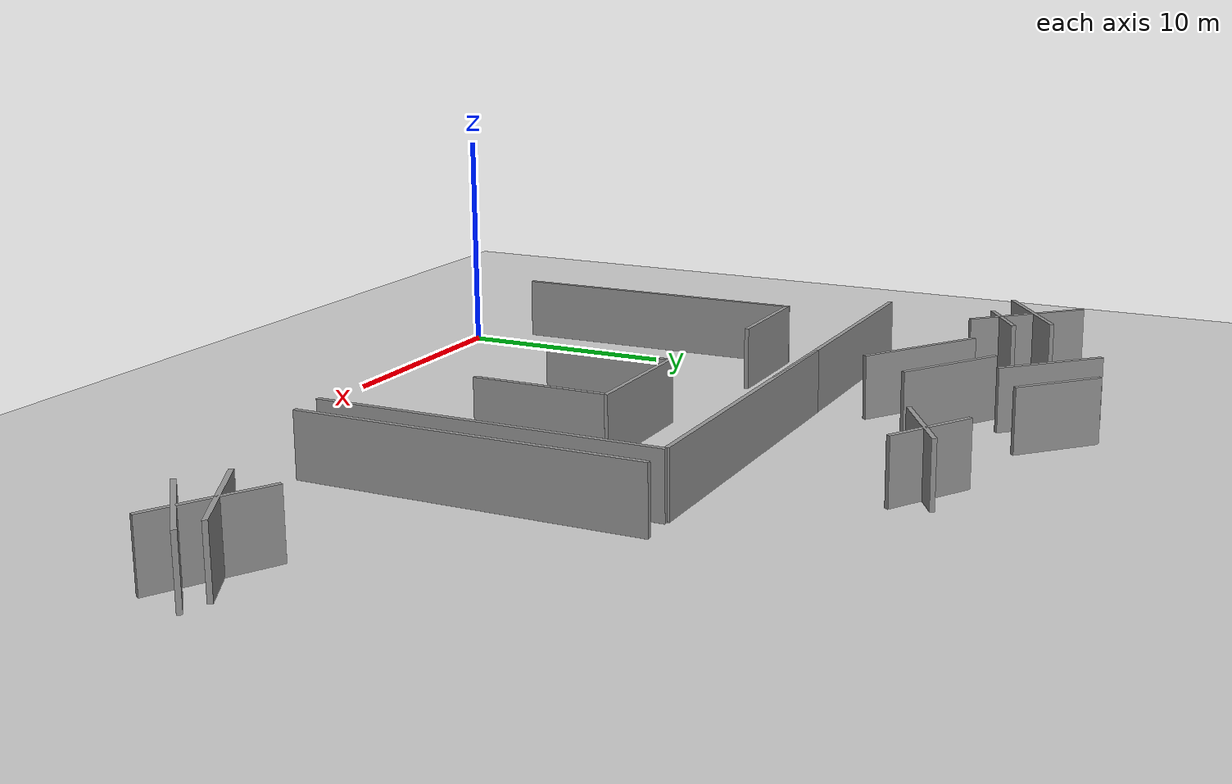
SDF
<sdf version="1.7">
 <world name="default">
  <model name="ground_plane">
   <static>1</static>
   <link name="link">
    <collision name="collision">
     <geometry><plane><normal>0 0 1</normal><size>100 100</size></plane></geometry>
     <surface>
      <contact><collide_bitmask>65535</collide_bitmask></contact>
      <friction><ode><mu>100</mu><mu2>50</mu2></ode></friction>
     </surface>
    </collision>
    <visual name="visual">
     <cast_shadows>0</cast_shadows>
     <geometry><plane><normal>0 0 1</normal><size>100 100</size></plane></geometry>
     <material>
      <script><uri>file://media/materials/scripts/gazebo.material</uri><name>Gazebo/Grey</name></script>
     </material>
    </visual>
   </link>
  </model>
  <model name="grey_wall_5_clone_0">
   <link name="link">
    <pose>0 0 1.4 0 -0 0</pose>
    <inertial>
     <mass>1</mass>
     <inertia><ixx>1</ixx><ixy>0</ixy><ixz>0</ixz><iyy>1</iyy><iyz>0</iyz><izz>1</izz></inertia>
    </inertial>
    <visual name="visual">
     <cast_shadows>0</cast_shadows>
     <geometry><box><size>5 0.2 2.8</size></box></geometry>
     <material>
      <script>
       <uri>model://grey_wall/materials/scripts</uri>
       <uri>model://grey_wall/materials/textures</uri>
       <name>vrc/grey_wall</name>
      </script>
      <shader type="pixel"><normal_map>__default__</normal_map></shader>
      <ambient>1 1 1 1</ambient>
      <diffuse>1 1 1 1</diffuse>
      <specular>0 0 0 1</specular>
      <emissive>0 0 0 1</emissive>
     </material>
    </visual>
    <collision name="collision">
     <geometry><box><size>5 0.2 2.8</size></box></geometry>
     <surface>
      <friction>
       <ode><mu>1</mu><mu2>1</mu2><fdir1>0 0 0</fdir1><slip1>0</slip1><slip2>0</slip2></ode>
       <torsional>
        <coefficient>1</coefficient>
        <patch_radius>0</patch_radius>
        <surface_radius>0</surface_radius>
        <use_patch_radius>1</use_patch_radius>
        <ode><slip>0</slip></ode>
       </torsional>
      </friction>
      <bounce><restitution_coefficient>0</restitution_coefficient><threshold>1e+06</threshold></bounce>
      <contact>
       <collide_without_contact>0</collide_without_contact>
       <collide_without_contact_bitmask>1</collide_without_contact_bitmask>
       <collide_bitmask>1</collide_bitmask>
       <ode>
        <soft_cfm>0</soft_cfm>
        <soft_erp>0.2</soft_erp>
        <kp>1e+13</kp>
        <kd>1</kd>
        <max_vel>0.01</max_vel>
        <min_depth>0</min_depth>
       </ode>
       <bullet>
        <split_impulse>1</split_impulse>
        <split_impulse_penetration_threshold>-0.01</split_impulse_penetration_threshold>
        <soft_cfm>0</soft_cfm>
        <soft_erp>0.2</soft_erp>
        <kp>1e+13</kp>
        <kd>1</kd>
       </bullet>
      </contact>
     </surface>
    </collision>
   </link>
   <static>1</static>
   <pose>30.4979 9.05013 0 0 -0 0.529284</pose>
  </model>
  <model name="grey_wall_5_clone_1">
   <link name="link">
    <pose>0 0 1.4 0 -0 0</pose>
    <inertial>
     <mass>1</mass>
     <inertia><ixx>1</ixx><ixy>0</ixy><ixz>0</ixz><iyy>1</iyy><iyz>0</iyz><izz>1</izz></inertia>
    </inertial>
    <visual name="visual">
     <cast_shadows>0</cast_shadows>
     <geometry><box><size>5 0.2 2.8</size></box></geometry>
     <material>
      <script>
       <uri>model://grey_wall/materials/scripts</uri>
       <uri>model://grey_wall/materials/textures</uri>
       <name>vrc/grey_wall</name>
      </script>
      <shader type="pixel"><normal_map>__default__</normal_map></shader>
      <ambient>1 1 1 1</ambient>
      <diffuse>1 1 1 1</diffuse>
      <specular>0 0 0 1</specular>
      <emissive>0 0 0 1</emissive>
     </material>
    </visual>
    <collision name="collision">
     <geometry><box><size>5 0.2 2.8</size></box></geometry>
     <surface>
      <friction>
       <ode><mu>1</mu><mu2>1</mu2><fdir1>0 0 0</fdir1><slip1>0</slip1><slip2>0</slip2></ode>
       <torsional>
        <coefficient>1</coefficient>
        <patch_radius>0</patch_radius>
        <surface_radius>0</surface_radius>
        <use_patch_radius>1</use_patch_radius>
        <ode><slip>0</slip></ode>
       </torsional>
      </friction>
      <bounce><restitution_coefficient>0</restitution_coefficient><threshold>1e+06</threshold></bounce>
      <contact>
       <collide_without_contact>0</collide_without_contact>
       <collide_without_contact_bitmask>1</collide_without_contact_bitmask>
       <collide_bitmask>1</collide_bitmask>
       <ode>
        <soft_cfm>0</soft_cfm>
        <soft_erp>0.2</soft_erp>
        <kp>1e+13</kp>
        <kd>1</kd>
        <max_vel>0.01</max_vel>
        <min_depth>0</min_depth>
       </ode>
       <bullet>
        <split_impulse>1</split_impulse>
        <split_impulse_penetration_threshold>-0.01</split_impulse_penetration_threshold>
        <soft_cfm>0</soft_cfm>
        <soft_erp>0.2</soft_erp>
        <kp>1e+13</kp>
        <kd>1</kd>
       </bullet>
      </contact>
     </surface>
    </collision>
   </link>
   <static>1</static>
   <pose>31.0104 9.05146 0 0 0 -0.50895</pose>
  </model>
  <model name="grey_wall_5_clone_clone_0_clone_1_clone">
   <link name="link">
    <pose>0 0 1.4 0 -0 0</pose>
    <inertial>
     <mass>1</mass>
     <inertia><ixx>1</ixx><ixy>0</ixy><ixz>0</ixz><iyy>1</iyy><iyz>0</iyz><izz>1</izz></inertia>
    </inertial>
    <visual name="visual">
     <cast_shadows>0</cast_shadows>
     <geometry><box><size>5 0.2 2.8</size></box></geometry>
     <material>
      <script>
       <uri>model://grey_wall/materials/scripts</uri>
       <uri>model://grey_wall/materials/textures</uri>
       <name>vrc/grey_wall</name>
      </script>
      <shader type="pixel"><normal_map>__default__</normal_map></shader>
      <ambient>1 1 1 1</ambient>
      <diffuse>1 1 1 1</diffuse>
      <specular>0 0 0 1</specular>
      <emissive>0 0 0 1</emissive>
     </material>
    </visual>
    <collision name="collision">
     <geometry><box><size>5 0.2 2.8</size></box></geometry>
     <surface>
      <friction>
       <ode><mu>1</mu><mu2>1</mu2><fdir1>0 0 0</fdir1><slip1>0</slip1><slip2>0</slip2></ode>
       <torsional>
        <coefficient>1</coefficient>
        <patch_radius>0</patch_radius>
        <surface_radius>0</surface_radius>
        <use_patch_radius>1</use_patch_radius>
        <ode><slip>0</slip></ode>
       </torsional>
      </friction>
      <bounce><restitution_coefficient>0</restitution_coefficient><threshold>1e+06</threshold></bounce>
      <contact>
       <collide_without_contact>0</collide_without_contact>
       <collide_without_contact_bitmask>1</collide_without_contact_bitmask>
       <collide_bitmask>1</collide_bitmask>
       <ode>
        <soft_cfm>0</soft_cfm>
        <soft_erp>0.2</soft_erp>
        <kp>1e+13</kp>
        <kd>1</kd>
        <max_vel>0.01</max_vel>
        <min_depth>0</min_depth>
       </ode>
       <bullet>
        <split_impulse>1</split_impulse>
        <split_impulse_penetration_threshold>-0.01</split_impulse_penetration_threshold>
        <soft_cfm>0</soft_cfm>
        <soft_erp>0.2</soft_erp>
        <kp>1e+13</kp>
        <kd>1</kd>
       </bullet>
      </contact>
     </surface>
    </collision>
   </link>
   <static>1</static>
   <pose>-5.91123 26.8606 0 0 -0 0.603575</pose>
  </model>
  <model name="grey_wall_5_clone_clone_0_clone_1_clone_0">
   <link name="link">
    <pose>0 0 1.4 0 -0 0</pose>
    <inertial>
     <mass>1</mass>
     <inertia><ixx>1</ixx><ixy>0</ixy><ixz>0</ixz><iyy>1</iyy><iyz>0</iyz><izz>1</izz></inertia>
    </inertial>
    <visual name="visual">
     <cast_shadows>0</cast_shadows>
     <geometry><box><size>5 0.2 2.8</size></box></geometry>
     <material>
      <script>
       <uri>model://grey_wall/materials/scripts</uri>
       <uri>model://grey_wall/materials/textures</uri>
       <name>vrc/grey_wall</name>
      </script>
      <shader type="pixel"><normal_map>__default__</normal_map></shader>
      <ambient>1 1 1 1</ambient>
      <diffuse>1 1 1 1</diffuse>
      <specular>0 0 0 1</specular>
      <emissive>0 0 0 1</emissive>
     </material>
    </visual>
    <collision name="collision">
     <geometry><box><size>5 0.2 2.8</size></box></geometry>
     <surface>
      <friction>
       <ode><mu>1</mu><mu2>1</mu2><fdir1>0 0 0</fdir1><slip1>0</slip1><slip2>0</slip2></ode>
       <torsional>
        <coefficient>1</coefficient>
        <patch_radius>0</patch_radius>
        <surface_radius>0</surface_radius>
        <use_patch_radius>1</use_patch_radius>
        <ode><slip>0</slip></ode>
       </torsional>
      </friction>
      <bounce><restitution_coefficient>0</restitution_coefficient><threshold>1e+06</threshold></bounce>
      <contact>
       <collide_without_contact>0</collide_without_contact>
       <collide_without_contact_bitmask>1</collide_without_contact_bitmask>
       <collide_bitmask>1</collide_bitmask>
       <ode>
        <soft_cfm>0</soft_cfm>
        <soft_erp>0.2</soft_erp>
        <kp>1e+13</kp>
        <kd>1</kd>
        <max_vel>0.01</max_vel>
        <min_depth>0</min_depth>
       </ode>
       <bullet>
        <split_impulse>1</split_impulse>
        <split_impulse_penetration_threshold>-0.01</split_impulse_penetration_threshold>
        <soft_cfm>0</soft_cfm>
        <soft_erp>0.2</soft_erp>
        <kp>1e+13</kp>
        <kd>1</kd>
       </bullet>
      </contact>
     </surface>
    </collision>
   </link>
   <static>1</static>
   <pose>4.749 26.0113 0 0 -0 2.55063</pose>
  </model>
  <model name="grey_wall_4_clone_0_clone_clone_0_clone_clone_clone_1_clone">
   <link name="link">
    <pose>0 0 1.4 0 -0 0</pose>
    <inertial>
     <mass>1</mass>
     <inertia><ixx>1</ixx><ixy>0</ixy><ixz>0</ixz><iyy>1</iyy><iyz>0</iyz><izz>1</izz></inertia>
    </inertial>
    <visual name="visual">
     <cast_shadows>0</cast_shadows>
     <geometry><box><size>4 0.2 2.8</size></box></geometry>
     <material>
      <script>
       <uri>model://grey_wall/materials/scripts</uri>
       <uri>model://grey_wall/materials/textures</uri>
       <name>vrc/grey_wall</name>
      </script>
      <shader type="pixel"><normal_map>__default__</normal_map></shader>
      <ambient>1 1 1 1</ambient>
      <diffuse>1 1 1 1</diffuse>
      <specular>0 0 0 1</specular>
      <emissive>0 0 0 1</emissive>
     </material>
    </visual>
    <collision name="collision">
     <geometry><box><size>4 0.2 2.8</size></box></geometry>
     <surface>
      <friction>
       <ode><mu>1</mu><mu2>1</mu2><fdir1>0 0 0</fdir1><slip1>0</slip1><slip2>0</slip2></ode>
       <torsional>
        <coefficient>1</coefficient>
        <patch_radius>0</patch_radius>
        <surface_radius>0</surface_radius>
        <use_patch_radius>1</use_patch_radius>
        <ode><slip>0</slip></ode>
       </torsional>
      </friction>
      <bounce><restitution_coefficient>0</restitution_coefficient><threshold>1e+06</threshold></bounce>
      <contact>
       <collide_without_contact>0</collide_without_contact>
       <collide_without_contact_bitmask>1</collide_without_contact_bitmask>
       <collide_bitmask>1</collide_bitmask>
       <ode>
        <soft_cfm>0</soft_cfm>
        <soft_erp>0.2</soft_erp>
        <kp>1e+13</kp>
        <kd>1</kd>
        <max_vel>0.01</max_vel>
        <min_depth>0</min_depth>
       </ode>
       <bullet>
        <split_impulse>1</split_impulse>
        <split_impulse_penetration_threshold>-0.01</split_impulse_penetration_threshold>
        <soft_cfm>0</soft_cfm>
        <soft_erp>0.2</soft_erp>
        <kp>1e+13</kp>
        <kd>1</kd>
       </bullet>
      </contact>
     </surface>
    </collision>
   </link>
   <static>1</static>
   <pose>13.6601 27.8625 0 0 -0 2.58708</pose>
  </model>
  <model name="grey_wall_5_clone_clone_0_clone_1_clone_clone_0">
   <link name="link">
    <pose>0 0 1.4 0 -0 0</pose>
    <inertial>
     <mass>1</mass>
     <inertia><ixx>1</ixx><ixy>0</ixy><ixz>0</ixz><iyy>1</iyy><iyz>0</iyz><izz>1</izz></inertia>
    </inertial>
    <visual name="visual">
     <cast_shadows>0</cast_shadows>
     <geometry><box><size>5 0.2 2.8</size></box></geometry>
     <material>
      <script>
       <uri>model://grey_wall/materials/scripts</uri>
       <uri>model://grey_wall/materials/textures</uri>
       <name>vrc/grey_wall</name>
      </script>
      <shader type="pixel"><normal_map>__default__</normal_map></shader>
      <ambient>1 1 1 1</ambient>
      <diffuse>1 1 1 1</diffuse>
      <specular>0 0 0 1</specular>
      <emissive>0 0 0 1</emissive>
     </material>
    </visual>
    <collision name="collision">
     <geometry><box><size>5 0.2 2.8</size></box></geometry>
     <surface>
      <friction>
       <ode><mu>1</mu><mu2>1</mu2><fdir1>0 0 0</fdir1><slip1>0</slip1><slip2>0</slip2></ode>
       <torsional>
        <coefficient>1</coefficient>
        <patch_radius>0</patch_radius>
        <surface_radius>0</surface_radius>
        <use_patch_radius>1</use_patch_radius>
        <ode><slip>0</slip></ode>
       </torsional>
      </friction>
      <bounce><restitution_coefficient>0</restitution_coefficient><threshold>1e+06</threshold></bounce>
      <contact>
       <collide_without_contact>0</collide_without_contact>
       <collide_without_contact_bitmask>1</collide_without_contact_bitmask>
       <collide_bitmask>1</collide_bitmask>
       <ode>
        <soft_cfm>0</soft_cfm>
        <soft_erp>0.2</soft_erp>
        <kp>1e+13</kp>
        <kd>1</kd>
        <max_vel>0.01</max_vel>
        <min_depth>0</min_depth>
       </ode>
       <bullet>
        <split_impulse>1</split_impulse>
        <split_impulse_penetration_threshold>-0.01</split_impulse_penetration_threshold>
        <soft_cfm>0</soft_cfm>
        <soft_erp>0.2</soft_erp>
        <kp>1e+13</kp>
        <kd>1</kd>
       </bullet>
      </contact>
     </surface>
    </collision>
   </link>
   <static>1</static>
   <pose>31.859 8.37092 0 0 -0 0.722717</pose>
  </model>
  <model name="grey_wall_6">
   <link name="link">
    <pose>0 0 1.4 0 -0 0</pose>
    <inertial>
     <mass>1</mass>
     <inertia><ixx>1</ixx><ixy>0</ixy><ixz>0</ixz><iyy>1</iyy><iyz>0</iyz><izz>1</izz></inertia>
    </inertial>
    <visual name="visual">
     <cast_shadows>0</cast_shadows>
     <geometry><box><size>6 0.2 2.8</size></box></geometry>
     <material>
      <script>
       <uri>model://grey_wall/materials/scripts</uri>
       <uri>model://grey_wall/materials/textures</uri>
       <name>vrc/grey_wall</name>
      </script>
      <shader type="pixel"><normal_map>__default__</normal_map></shader>
      <ambient>1 1 1 1</ambient>
      <diffuse>1 1 1 1</diffuse>
      <specular>0 0 0 1</specular>
      <emissive>0 0 0 1</emissive>
     </material>
    </visual>
    <collision name="collision">
     <geometry><box><size>6 0.2 2.8</size></box></geometry>
     <surface>
      <friction>
       <ode><mu>1</mu><mu2>1</mu2><fdir1>0 0 0</fdir1><slip1>0</slip1><slip2>0</slip2></ode>
       <torsional>
        <coefficient>1</coefficient>
        <patch_radius>0</patch_radius>
        <surface_radius>0</surface_radius>
        <use_patch_radius>1</use_patch_radius>
        <ode><slip>0</slip></ode>
       </torsional>
      </friction>
      <bounce><restitution_coefficient>0</restitution_coefficient><threshold>1e+06</threshold></bounce>
      <contact>
       <collide_without_contact>0</collide_without_contact>
       <collide_without_contact_bitmask>1</collide_without_contact_bitmask>
       <collide_bitmask>1</collide_bitmask>
       <ode>
        <soft_cfm>0</soft_cfm>
        <soft_erp>0.2</soft_erp>
        <kp>1e+13</kp>
        <kd>1</kd>
        <max_vel>0.01</max_vel>
        <min_depth>0</min_depth>
       </ode>
       <bullet>
        <split_impulse>1</split_impulse>
        <split_impulse_penetration_threshold>-0.01</split_impulse_penetration_threshold>
        <soft_cfm>0</soft_cfm>
        <soft_erp>0.2</soft_erp>
        <kp>1e+13</kp>
        <kd>1</kd>
       </bullet>
      </contact>
     </surface>
    </collision>
   </link>
   <static>1</static>
   <pose>-5.41021 26.7468 0 0 -0 2.33668</pose>
  </model>
  <model name="grey_wall_6_clone_clone_1">
   <link name="link">
    <pose>0 0 1.4 0 -0 0</pose>
    <inertial>
     <mass>1</mass>
     <inertia><ixx>1</ixx><ixy>0</ixy><ixz>0</ixz><iyy>1</iyy><iyz>0</iyz><izz>1</izz></inertia>
    </inertial>
    <visual name="visual">
     <cast_shadows>0</cast_shadows>
     <geometry><box><size>6 0.2 2.8</size></box></geometry>
     <material>
      <script>
       <uri>model://grey_wall/materials/scripts</uri>
       <uri>model://grey_wall/materials/textures</uri>
       <name>vrc/grey_wall</name>
      </script>
      <shader type="pixel"><normal_map>__default__</normal_map></shader>
      <ambient>1 1 1 1</ambient>
      <diffuse>1 1 1 1</diffuse>
      <specular>0 0 0 1</specular>
      <emissive>0 0 0 1</emissive>
     </material>
    </visual>
    <collision name="collision">
     <geometry><box><size>6 0.2 2.8</size></box></geometry>
     <surface>
      <friction>
       <ode><mu>1</mu><mu2>1</mu2><fdir1>0 0 0</fdir1><slip1>0</slip1><slip2>0</slip2></ode>
       <torsional>
        <coefficient>1</coefficient>
        <patch_radius>0</patch_radius>
        <surface_radius>0</surface_radius>
        <use_patch_radius>1</use_patch_radius>
        <ode><slip>0</slip></ode>
       </torsional>
      </friction>
      <bounce><restitution_coefficient>0</restitution_coefficient><threshold>1e+06</threshold></bounce>
      <contact>
       <collide_without_contact>0</collide_without_contact>
       <collide_without_contact_bitmask>1</collide_without_contact_bitmask>
       <collide_bitmask>1</collide_bitmask>
       <ode>
        <soft_cfm>0</soft_cfm>
        <soft_erp>0.2</soft_erp>
        <kp>1e+13</kp>
        <kd>1</kd>
        <max_vel>0.01</max_vel>
        <min_depth>0</min_depth>
       </ode>
       <bullet>
        <split_impulse>1</split_impulse>
        <split_impulse_penetration_threshold>-0.01</split_impulse_penetration_threshold>
        <soft_cfm>0</soft_cfm>
        <soft_erp>0.2</soft_erp>
        <kp>1e+13</kp>
        <kd>1</kd>
       </bullet>
      </contact>
     </surface>
    </collision>
   </link>
   <static>1</static>
   <pose>2.60048 24.0847 -1e-06 -0.017688 -0 2.53788</pose>
  </model>
  <model name="grey_wall_4_clone_clone">
   <link name="link">
    <pose>0 0 1.4 0 -0 0</pose>
    <inertial>
     <mass>1</mass>
     <inertia><ixx>1</ixx><ixy>0</ixy><ixz>0</ixz><iyy>1</iyy><iyz>0</iyz><izz>1</izz></inertia>
    </inertial>
    <visual name="visual">
     <cast_shadows>0</cast_shadows>
     <geometry><box><size>4 0.2 2.8</size></box></geometry>
     <material>
      <script>
       <uri>model://grey_wall/materials/scripts</uri>
       <uri>model://grey_wall/materials/textures</uri>
       <name>vrc/grey_wall</name>
      </script>
      <shader type="pixel"><normal_map>__default__</normal_map></shader>
      <ambient>1 1 1 1</ambient>
      <diffuse>1 1 1 1</diffuse>
      <specular>0 0 0 1</specular>
      <emissive>0 0 0 1</emissive>
     </material>
    </visual>
    <collision name="collision">
     <geometry><box><size>4 0.2 2.8</size></box></geometry>
     <surface>
      <friction>
       <ode><mu>1</mu><mu2>1</mu2><fdir1>0 0 0</fdir1><slip1>0</slip1><slip2>0</slip2></ode>
       <torsional>
        <coefficient>1</coefficient>
        <patch_radius>0</patch_radius>
        <surface_radius>0</surface_radius>
        <use_patch_radius>1</use_patch_radius>
        <ode><slip>0</slip></ode>
       </torsional>
      </friction>
      <bounce><restitution_coefficient>0</restitution_coefficient><threshold>1e+06</threshold></bounce>
      <contact>
       <collide_without_contact>0</collide_without_contact>
       <collide_without_contact_bitmask>1</collide_without_contact_bitmask>
       <collide_bitmask>1</collide_bitmask>
       <ode>
        <soft_cfm>0</soft_cfm>
        <soft_erp>0.2</soft_erp>
        <kp>1e+13</kp>
        <kd>1</kd>
        <max_vel>0.01</max_vel>
        <min_depth>0</min_depth>
       </ode>
       <bullet>
        <split_impulse>1</split_impulse>
        <split_impulse_penetration_threshold>-0.01</split_impulse_penetration_threshold>
        <soft_cfm>0</soft_cfm>
        <soft_erp>0.2</soft_erp>
        <kp>1e+13</kp>
        <kd>1</kd>
       </bullet>
      </contact>
     </surface>
    </collision>
   </link>
   <static>1</static>
   <pose>13.2894 27.4013 0 0 -0 0.540349</pose>
  </model>
  <model name="grey_wall_3_clone_clone_clone">
   <link name="link">
    <pose>0 0 1.4 0 -0 0</pose>
    <inertial>
     <mass>1</mass>
     <inertia><ixx>1</ixx><ixy>0</ixy><ixz>0</ixz><iyy>1</iyy><iyz>0</iyz><izz>1</izz></inertia>
    </inertial>
    <visual name="visual">
     <cast_shadows>0</cast_shadows>
     <geometry><box><size>3 0.2 2.8</size></box></geometry>
     <material>
      <script>
       <uri>model://grey_wall/materials/scripts</uri>
       <uri>model://grey_wall/materials/textures</uri>
       <name>vrc/grey_wall</name>
      </script>
      <shader type="pixel"><normal_map>__default__</normal_map></shader>
      <ambient>1 1 1 1</ambient>
      <diffuse>1 1 1 1</diffuse>
      <specular>0 0 0 1</specular>
      <emissive>0 0 0 1</emissive>
     </material>
    </visual>
    <collision name="collision">
     <geometry><box><size>2.96 0.2 2.8</size></box></geometry>
     <surface>
      <friction>
       <ode><mu>1</mu><mu2>1</mu2><fdir1>0 0 0</fdir1><slip1>0</slip1><slip2>0</slip2></ode>
       <torsional>
        <coefficient>1</coefficient>
        <patch_radius>0</patch_radius>
        <surface_radius>0</surface_radius>
        <use_patch_radius>1</use_patch_radius>
        <ode><slip>0</slip></ode>
       </torsional>
      </friction>
      <bounce><restitution_coefficient>0</restitution_coefficient><threshold>1e+06</threshold></bounce>
      <contact>
       <collide_without_contact>0</collide_without_contact>
       <collide_without_contact_bitmask>1</collide_without_contact_bitmask>
       <collide_bitmask>1</collide_bitmask>
       <ode>
        <soft_cfm>0</soft_cfm>
        <soft_erp>0.2</soft_erp>
        <kp>1e+13</kp>
        <kd>1</kd>
        <max_vel>0.01</max_vel>
        <min_depth>0</min_depth>
       </ode>
       <bullet>
        <split_impulse>1</split_impulse>
        <split_impulse_penetration_threshold>-0.01</split_impulse_penetration_threshold>
        <soft_cfm>0</soft_cfm>
        <soft_erp>0.2</soft_erp>
        <kp>1e+13</kp>
        <kd>1</kd>
       </bullet>
      </contact>
     </surface>
    </collision>
   </link>
   <static>1</static>
   <pose>-4.12474 25.9342 0 0 -0 0.580341</pose>
  </model>
  <model name="grey_wall_5_clone_2_clone_clone_clone_clone">
   <link name="link">
    <pose>0 0 1.4 0 -0 0</pose>
    <inertial>
     <mass>1</mass>
     <inertia><ixx>1</ixx><ixy>0</ixy><ixz>0</ixz><iyy>1</iyy><iyz>0</iyz><izz>1</izz></inertia>
    </inertial>
    <visual name="visual">
     <cast_shadows>0</cast_shadows>
     <geometry><box><size>5 0.2 2.8</size></box></geometry>
     <material>
      <script>
       <uri>model://grey_wall/materials/scripts</uri>
       <uri>model://grey_wall/materials/textures</uri>
       <name>vrc/grey_wall</name>
      </script>
      <shader type="pixel"><normal_map>__default__</normal_map></shader>
      <ambient>1 1 1 1</ambient>
      <diffuse>1 1 1 1</diffuse>
      <specular>0 0 0 1</specular>
      <emissive>0 0 0 1</emissive>
     </material>
    </visual>
    <collision name="collision">
     <geometry><box><size>5 0.2 2.8</size></box></geometry>
     <surface>
      <friction>
       <ode><mu>1</mu><mu2>1</mu2><fdir1>0 0 0</fdir1><slip1>0</slip1><slip2>0</slip2></ode>
       <torsional>
        <coefficient>1</coefficient>
        <patch_radius>0</patch_radius>
        <surface_radius>0</surface_radius>
        <use_patch_radius>1</use_patch_radius>
        <ode><slip>0</slip></ode>
       </torsional>
      </friction>
      <bounce><restitution_coefficient>0</restitution_coefficient><threshold>1e+06</threshold></bounce>
      <contact>
       <collide_without_contact>0</collide_without_contact>
       <collide_without_contact_bitmask>1</collide_without_contact_bitmask>
       <collide_bitmask>1</collide_bitmask>
       <ode>
        <soft_cfm>0</soft_cfm>
        <soft_erp>0.2</soft_erp>
        <kp>1e+13</kp>
        <kd>1</kd>
        <max_vel>0.01</max_vel>
        <min_depth>0</min_depth>
       </ode>
       <bullet>
        <split_impulse>1</split_impulse>
        <split_impulse_penetration_threshold>-0.01</split_impulse_penetration_threshold>
        <soft_cfm>0</soft_cfm>
        <soft_erp>0.2</soft_erp>
        <kp>1e+13</kp>
        <kd>1</kd>
       </bullet>
      </contact>
     </surface>
    </collision>
   </link>
   <static>1</static>
   <pose>2.83506 29.7835 0 0 0 -0.796156</pose>
  </model>
  <model name="grey_wall_5_clone_clone_0_clone_1_clone_clone_clone">
   <link name="link">
    <pose>0 0 1.4 0 -0 0</pose>
    <inertial>
     <mass>1</mass>
     <inertia><ixx>1</ixx><ixy>0</ixy><ixz>0</ixz><iyy>1</iyy><iyz>0</iyz><izz>1</izz></inertia>
    </inertial>
    <visual name="visual">
     <cast_shadows>0</cast_shadows>
     <geometry><box><size>4 0.2 2.8</size></box></geometry>
     <material>
      <script>
       <uri>model://grey_wall/materials/scripts</uri>
       <uri>model://grey_wall/materials/textures</uri>
       <name>vrc/grey_wall</name>
      </script>
      <shader type="pixel"><normal_map>__default__</normal_map></shader>
      <ambient>1 1 1 1</ambient>
      <diffuse>1 1 1 1</diffuse>
      <specular>0 0 0 1</specular>
      <emissive>0 0 0 1</emissive>
     </material>
    </visual>
    <collision name="collision">
     <geometry><box><size>4 0.2 2.8</size></box></geometry>
     <surface>
      <friction>
       <ode><mu>1</mu><mu2>1</mu2><fdir1>0 0 0</fdir1><slip1>0</slip1><slip2>0</slip2></ode>
       <torsional>
        <coefficient>1</coefficient>
        <patch_radius>0</patch_radius>
        <surface_radius>0</surface_radius>
        <use_patch_radius>1</use_patch_radius>
        <ode><slip>0</slip></ode>
       </torsional>
      </friction>
      <bounce><restitution_coefficient>0</restitution_coefficient><threshold>1e+06</threshold></bounce>
      <contact>
       <collide_without_contact>0</collide_without_contact>
       <collide_without_contact_bitmask>1</collide_without_contact_bitmask>
       <collide_bitmask>1</collide_bitmask>
       <ode>
        <soft_cfm>0</soft_cfm>
        <soft_erp>0.2</soft_erp>
        <kp>1e+13</kp>
        <kd>1</kd>
        <max_vel>0.01</max_vel>
        <min_depth>0</min_depth>
       </ode>
       <bullet>
        <split_impulse>1</split_impulse>
        <split_impulse_penetration_threshold>-0.01</split_impulse_penetration_threshold>
        <soft_cfm>0</soft_cfm>
        <soft_erp>0.2</soft_erp>
        <kp>1e+13</kp>
        <kd>1</kd>
       </bullet>
      </contact>
     </surface>
    </collision>
   </link>
   <static>1</static>
   <pose>6.14216 30.8478 0.11601 0 -0 2.37273</pose>
  </model>
  <model name="grey_wall_15_clone_0_clone_clone_clone_2">
   <link name="link">
    <pose>0 0 1.4 0 -0 0</pose>
    <inertial>
     <mass>1</mass>
     <inertia><ixx>1</ixx><ixy>0</ixy><ixz>0</ixz><iyy>1</iyy><iyz>0</iyz><izz>1</izz></inertia>
    </inertial>
    <visual name="visual">
     <cast_shadows>0</cast_shadows>
     <geometry><box><size>15 0.2 2.8</size></box></geometry>
     <material>
      <script>
       <uri>model://grey_wall/materials/scripts</uri>
       <uri>model://grey_wall/materials/textures</uri>
       <name>vrc/grey_wall</name>
      </script>
      <shader type="pixel"><normal_map>__default__</normal_map></shader>
      <ambient>1 1 1 1</ambient>
      <diffuse>1 1 1 1</diffuse>
      <specular>0 0 0 1</specular>
      <emissive>0 0 0 1</emissive>
     </material>
    </visual>
    <collision name="collision">
     <geometry><box><size>15 0.2 2.8</size></box></geometry>
     <surface>
      <friction>
       <ode><mu>1</mu><mu2>1</mu2><fdir1>0 0 0</fdir1><slip1>0</slip1><slip2>0</slip2></ode>
       <torsional>
        <coefficient>1</coefficient>
        <patch_radius>0</patch_radius>
        <surface_radius>0</surface_radius>
        <use_patch_radius>1</use_patch_radius>
        <ode><slip>0</slip></ode>
       </torsional>
      </friction>
      <bounce><restitution_coefficient>0</restitution_coefficient><threshold>1e+06</threshold></bounce>
      <contact>
       <collide_without_contact>0</collide_without_contact>
       <collide_without_contact_bitmask>1</collide_without_contact_bitmask>
       <collide_bitmask>1</collide_bitmask>
       <ode>
        <soft_cfm>0</soft_cfm>
        <soft_erp>0.2</soft_erp>
        <kp>1e+13</kp>
        <kd>1</kd>
        <max_vel>0.01</max_vel>
        <min_depth>0</min_depth>
       </ode>
       <bullet>
        <split_impulse>1</split_impulse>
        <split_impulse_penetration_threshold>-0.01</split_impulse_penetration_threshold>
        <soft_cfm>0</soft_cfm>
        <soft_erp>0.2</soft_erp>
        <kp>1e+13</kp>
        <kd>1</kd>
       </bullet>
      </contact>
     </surface>
    </collision>
   </link>
   <static>1</static>
   <pose>2.34639 20.1446 0 0 -0 0.001488</pose>
  </model>
  <model name="grey_wall_15_clone_0_clone_clone_clone_3">
   <link name="link">
    <pose>0 0 1.4 0 -0 0</pose>
    <inertial>
     <mass>1</mass>
     <inertia><ixx>1</ixx><ixy>0</ixy><ixz>0</ixz><iyy>1</iyy><iyz>0</iyz><izz>1</izz></inertia>
    </inertial>
    <visual name="visual">
     <cast_shadows>0</cast_shadows>
     <geometry><box><size>15 0.2 2.8</size></box></geometry>
     <material>
      <script>
       <uri>model://grey_wall/materials/scripts</uri>
       <uri>model://grey_wall/materials/textures</uri>
       <name>vrc/grey_wall</name>
      </script>
      <shader type="pixel"><normal_map>__default__</normal_map></shader>
      <ambient>1 1 1 1</ambient>
      <diffuse>1 1 1 1</diffuse>
      <specular>0 0 0 1</specular>
      <emissive>0 0 0 1</emissive>
     </material>
    </visual>
    <collision name="collision">
     <geometry><box><size>15 0.2 2.8</size></box></geometry>
     <surface>
      <friction>
       <ode><mu>1</mu><mu2>1</mu2><fdir1>0 0 0</fdir1><slip1>0</slip1><slip2>0</slip2></ode>
       <torsional>
        <coefficient>1</coefficient>
        <patch_radius>0</patch_radius>
        <surface_radius>0</surface_radius>
        <use_patch_radius>1</use_patch_radius>
        <ode><slip>0</slip></ode>
       </torsional>
      </friction>
      <bounce><restitution_coefficient>0</restitution_coefficient><threshold>1e+06</threshold></bounce>
      <contact>
       <collide_without_contact>0</collide_without_contact>
       <collide_without_contact_bitmask>1</collide_without_contact_bitmask>
       <collide_bitmask>1</collide_bitmask>
       <ode>
        <soft_cfm>0</soft_cfm>
        <soft_erp>0.2</soft_erp>
        <kp>1e+13</kp>
        <kd>1</kd>
        <max_vel>0.01</max_vel>
        <min_depth>0</min_depth>
       </ode>
       <bullet>
        <split_impulse>1</split_impulse>
        <split_impulse_penetration_threshold>-0.01</split_impulse_penetration_threshold>
        <soft_cfm>0</soft_cfm>
        <soft_erp>0.2</soft_erp>
        <kp>1e+13</kp>
        <kd>1</kd>
       </bullet>
      </contact>
     </surface>
    </collision>
   </link>
   <static>1</static>
   <pose>12.5097 20.1685 0 0 -0 0.001488</pose>
  </model>
  <model name="grey_wall_15_clone_0_clone_clone_0_clone_0_clone">
   <link name="link">
    <pose>0 0 1.4 0 -0 0</pose>
    <inertial>
     <mass>1</mass>
     <inertia><ixx>1</ixx><ixy>0</ixy><ixz>0</ixz><iyy>1</iyy><iyz>0</iyz><izz>1</izz></inertia>
    </inertial>
    <visual name="visual">
     <cast_shadows>0</cast_shadows>
     <geometry><box><size>15 0.2 2.8</size></box></geometry>
     <material>
      <script>
       <uri>model://grey_wall/materials/scripts</uri>
       <uri>model://grey_wall/materials/textures</uri>
       <name>vrc/grey_wall</name>
      </script>
      <shader type="pixel"><normal_map>__default__</normal_map></shader>
      <ambient>1 1 1 1</ambient>
      <diffuse>1 1 1 1</diffuse>
      <specular>0 0 0 1</specular>
      <emissive>0 0 0 1</emissive>
     </material>
    </visual>
    <collision name="collision">
     <geometry><box><size>15 0.2 2.8</size></box></geometry>
     <surface>
      <friction>
       <ode><mu>1</mu><mu2>1</mu2><fdir1>0 0 0</fdir1><slip1>0</slip1><slip2>0</slip2></ode>
       <torsional>
        <coefficient>1</coefficient>
        <patch_radius>0</patch_radius>
        <surface_radius>0</surface_radius>
        <use_patch_radius>1</use_patch_radius>
        <ode><slip>0</slip></ode>
       </torsional>
      </friction>
      <bounce><restitution_coefficient>0</restitution_coefficient><threshold>1e+06</threshold></bounce>
      <contact>
       <collide_without_contact>0</collide_without_contact>
       <collide_without_contact_bitmask>1</collide_without_contact_bitmask>
       <collide_bitmask>1</collide_bitmask>
       <ode>
        <soft_cfm>0</soft_cfm>
        <soft_erp>0.2</soft_erp>
        <kp>1e+13</kp>
        <kd>1</kd>
        <max_vel>0.01</max_vel>
        <min_depth>0</min_depth>
       </ode>
       <bullet>
        <split_impulse>1</split_impulse>
        <split_impulse_penetration_threshold>-0.01</split_impulse_penetration_threshold>
        <soft_cfm>0</soft_cfm>
        <soft_erp>0.2</soft_erp>
        <kp>1e+13</kp>
        <kd>1</kd>
       </bullet>
      </contact>
     </surface>
    </collision>
   </link>
   <static>1</static>
   <pose>21.7089 12.8125 0 0 -0 1.57141</pose>
  </model>
  <model name="grey_wall_15_clone_0_clone_clone_0_clone_0_clone_0">
   <link name="link">
    <pose>0 0 1.4 0 -0 0</pose>
    <inertial>
     <mass>1</mass>
     <inertia><ixx>1</ixx><ixy>0</ixy><ixz>0</ixz><iyy>1</iyy><iyz>0</iyz><izz>1</izz></inertia>
    </inertial>
    <visual name="visual">
     <cast_shadows>0</cast_shadows>
     <geometry><box><size>15 0.2 2.8</size></box></geometry>
     <material>
      <script>
       <uri>model://grey_wall/materials/scripts</uri>
       <uri>model://grey_wall/materials/textures</uri>
       <name>vrc/grey_wall</name>
      </script>
      <shader type="pixel"><normal_map>__default__</normal_map></shader>
      <ambient>1 1 1 1</ambient>
      <diffuse>1 1 1 1</diffuse>
      <specular>0 0 0 1</specular>
      <emissive>0 0 0 1</emissive>
     </material>
    </visual>
    <collision name="collision">
     <geometry><box><size>15 0.2 2.8</size></box></geometry>
     <surface>
      <friction>
       <ode><mu>1</mu><mu2>1</mu2><fdir1>0 0 0</fdir1><slip1>0</slip1><slip2>0</slip2></ode>
       <torsional>
        <coefficient>1</coefficient>
        <patch_radius>0</patch_radius>
        <surface_radius>0</surface_radius>
        <use_patch_radius>1</use_patch_radius>
        <ode><slip>0</slip></ode>
       </torsional>
      </friction>
      <bounce><restitution_coefficient>0</restitution_coefficient><threshold>1e+06</threshold></bounce>
      <contact>
       <collide_without_contact>0</collide_without_contact>
       <collide_without_contact_bitmask>1</collide_without_contact_bitmask>
       <collide_bitmask>1</collide_bitmask>
       <ode>
        <soft_cfm>0</soft_cfm>
        <soft_erp>0.2</soft_erp>
        <kp>1e+13</kp>
        <kd>1</kd>
        <max_vel>0.01</max_vel>
        <min_depth>0</min_depth>
       </ode>
       <bullet>
        <split_impulse>1</split_impulse>
        <split_impulse_penetration_threshold>-0.01</split_impulse_penetration_threshold>
        <soft_cfm>0</soft_cfm>
        <soft_erp>0.2</soft_erp>
        <kp>1e+13</kp>
        <kd>1</kd>
       </bullet>
      </contact>
     </surface>
    </collision>
   </link>
   <static>1</static>
   <pose>20.1204 12.7006 0 0 -0 1.57141</pose>
  </model>
  <model name="grey_wall_15_clone_0_clone_clone_clone_clone_clone">
   <link name="link">
    <pose>0 0 1.4 0 -0 0</pose>
    <inertial>
     <mass>1</mass>
     <inertia><ixx>1</ixx><ixy>0</ixy><ixz>0</ixz><iyy>1</iyy><iyz>0</iyz><izz>1</izz></inertia>
    </inertial>
    <visual name="visual">
     <cast_shadows>0</cast_shadows>
     <geometry><box><size>14 0.2 2.8</size></box></geometry>
     <material>
      <script>
       <uri>model://grey_wall/materials/scripts</uri>
       <uri>model://grey_wall/materials/textures</uri>
       <name>vrc/grey_wall</name>
      </script>
      <shader type="pixel"><normal_map>__default__</normal_map></shader>
      <ambient>1 1 1 1</ambient>
      <diffuse>1 1 1 1</diffuse>
      <specular>0 0 0 1</specular>
      <emissive>0 0 0 1</emissive>
     </material>
    </visual>
    <collision name="collision">
     <geometry><box><size>14 0.2 2.8</size></box></geometry>
     <surface>
      <friction>
       <ode><mu>1</mu><mu2>1</mu2><fdir1>0 0 0</fdir1><slip1>0</slip1><slip2>0</slip2></ode>
       <torsional>
        <coefficient>1</coefficient>
        <patch_radius>0</patch_radius>
        <surface_radius>0</surface_radius>
        <use_patch_radius>1</use_patch_radius>
        <ode><slip>0</slip></ode>
       </torsional>
      </friction>
      <bounce><restitution_coefficient>0</restitution_coefficient><threshold>1e+06</threshold></bounce>
      <contact>
       <collide_without_contact>0</collide_without_contact>
       <collide_without_contact_bitmask>1</collide_without_contact_bitmask>
       <collide_bitmask>1</collide_bitmask>
       <ode>
        <soft_cfm>0</soft_cfm>
        <soft_erp>0.2</soft_erp>
        <kp>1e+13</kp>
        <kd>1</kd>
        <max_vel>0.01</max_vel>
        <min_depth>0</min_depth>
       </ode>
       <bullet>
        <split_impulse>1</split_impulse>
        <split_impulse_penetration_threshold>-0.01</split_impulse_penetration_threshold>
        <soft_cfm>0</soft_cfm>
        <soft_erp>0.2</soft_erp>
        <kp>1e+13</kp>
        <kd>1</kd>
       </bullet>
      </contact>
     </surface>
    </collision>
   </link>
   <static>1</static>
   <pose>-2.05211 9.04249 0 0 0 -1.55901</pose>
  </model>
  <model name="grey_wall_5_clone_clone_0_clone_1_clone_0_clone_0_clone">
   <link name="link">
    <pose>0 0 1.4 0 -0 0</pose>
    <inertial>
     <mass>1</mass>
     <inertia><ixx>1</ixx><ixy>0</ixy><ixz>0</ixz><iyy>1</iyy><iyz>0</iyz><izz>1</izz></inertia>
    </inertial>
    <visual name="visual">
     <cast_shadows>0</cast_shadows>
     <geometry><box><size>5 0.2 2.8</size></box></geometry>
     <material>
      <script>
       <uri>model://grey_wall/materials/scripts</uri>
       <uri>model://grey_wall/materials/textures</uri>
       <name>vrc/grey_wall</name>
      </script>
      <shader type="pixel"><normal_map>__default__</normal_map></shader>
      <ambient>1 1 1 1</ambient>
      <diffuse>1 1 1 1</diffuse>
      <specular>0 0 0 1</specular>
      <emissive>0 0 0 1</emissive>
     </material>
    </visual>
    <collision name="collision">
     <geometry><box><size>5 0.2 2.8</size></box></geometry>
     <surface>
      <friction>
       <ode><mu>1</mu><mu2>1</mu2><fdir1>0 0 0</fdir1><slip1>0</slip1><slip2>0</slip2></ode>
       <torsional>
        <coefficient>1</coefficient>
        <patch_radius>0</patch_radius>
        <surface_radius>0</surface_radius>
        <use_patch_radius>1</use_patch_radius>
        <ode><slip>0</slip></ode>
       </torsional>
      </friction>
      <bounce><restitution_coefficient>0</restitution_coefficient><threshold>1e+06</threshold></bounce>
      <contact>
       <collide_without_contact>0</collide_without_contact>
       <collide_without_contact_bitmask>1</collide_without_contact_bitmask>
       <collide_bitmask>1</collide_bitmask>
       <ode>
        <soft_cfm>0</soft_cfm>
        <soft_erp>0.2</soft_erp>
        <kp>1e+13</kp>
        <kd>1</kd>
        <max_vel>0.01</max_vel>
        <min_depth>0</min_depth>
       </ode>
       <bullet>
        <split_impulse>1</split_impulse>
        <split_impulse_penetration_threshold>-0.01</split_impulse_penetration_threshold>
        <soft_cfm>0</soft_cfm>
        <soft_erp>0.2</soft_erp>
        <kp>1e+13</kp>
        <kd>1</kd>
       </bullet>
      </contact>
     </surface>
    </collision>
   </link>
   <static>1</static>
   <pose>0.334254 15.9518 0 0 -0 0.001302</pose>
  </model>
  <model name="grey_wall_6_clone_0_clone_clone_clone_clone_0_clone">
   <link name="link">
    <pose>0 0 1.4 0 -0 0</pose>
    <inertial>
     <mass>1</mass>
     <inertia><ixx>1</ixx><ixy>0</ixy><ixz>0</ixz><iyy>1</iyy><iyz>0</iyz><izz>1</izz></inertia>
    </inertial>
    <visual name="visual">
     <cast_shadows>0</cast_shadows>
     <geometry><box><size>6 0.2 2.8</size></box></geometry>
     <material>
      <script>
       <uri>model://grey_wall/materials/scripts</uri>
       <uri>model://grey_wall/materials/textures</uri>
       <name>vrc/grey_wall</name>
      </script>
      <shader type="pixel"><normal_map>__default__</normal_map></shader>
      <ambient>1 1 1 1</ambient>
      <diffuse>1 1 1 1</diffuse>
      <specular>0 0 0 1</specular>
      <emissive>0 0 0 1</emissive>
     </material>
    </visual>
    <collision name="collision">
     <geometry><box><size>6 0.2 2.8</size></box></geometry>
     <surface>
      <friction>
       <ode><mu>1</mu><mu2>1</mu2><fdir1>0 0 0</fdir1><slip1>0</slip1><slip2>0</slip2></ode>
       <torsional>
        <coefficient>1</coefficient>
        <patch_radius>0</patch_radius>
        <surface_radius>0</surface_radius>
        <use_patch_radius>1</use_patch_radius>
        <ode><slip>0</slip></ode>
       </torsional>
      </friction>
      <bounce><restitution_coefficient>0</restitution_coefficient><threshold>1e+06</threshold></bounce>
      <contact>
       <collide_without_contact>0</collide_without_contact>
       <collide_without_contact_bitmask>1</collide_without_contact_bitmask>
       <collide_bitmask>1</collide_bitmask>
       <ode>
        <soft_cfm>0</soft_cfm>
        <soft_erp>0.2</soft_erp>
        <kp>1e+13</kp>
        <kd>1</kd>
        <max_vel>0.01</max_vel>
        <min_depth>0</min_depth>
       </ode>
       <bullet>
        <split_impulse>1</split_impulse>
        <split_impulse_penetration_threshold>-0.01</split_impulse_penetration_threshold>
        <soft_cfm>0</soft_cfm>
        <soft_erp>0.2</soft_erp>
        <kp>1e+13</kp>
        <kd>1</kd>
       </bullet>
      </contact>
     </surface>
    </collision>
   </link>
   <static>1</static>
   <pose>9.08072 12.172 0 0 -0 1.56941</pose>
  </model>
  <model name="grey_wall_6_clone_0_clone_clone_clone_clone_0_clone_0">
   <link name="link">
    <pose>0 0 1.4 0 -0 0</pose>
    <inertial>
     <mass>1</mass>
     <inertia><ixx>1</ixx><ixy>0</ixy><ixz>0</ixz><iyy>1</iyy><iyz>0</iyz><izz>1</izz></inertia>
    </inertial>
    <visual name="visual">
     <cast_shadows>0</cast_shadows>
     <geometry><box><size>6 0.2 2.8</size></box></geometry>
     <material>
      <script>
       <uri>model://grey_wall/materials/scripts</uri>
       <uri>model://grey_wall/materials/textures</uri>
       <name>vrc/grey_wall</name>
      </script>
      <shader type="pixel"><normal_map>__default__</normal_map></shader>
      <ambient>1 1 1 1</ambient>
      <diffuse>1 1 1 1</diffuse>
      <specular>0 0 0 1</specular>
      <emissive>0 0 0 1</emissive>
     </material>
    </visual>
    <collision name="collision">
     <geometry><box><size>6 0.2 2.8</size></box></geometry>
     <surface>
      <friction>
       <ode><mu>1</mu><mu2>1</mu2><fdir1>0 0 0</fdir1><slip1>0</slip1><slip2>0</slip2></ode>
       <torsional>
        <coefficient>1</coefficient>
        <patch_radius>0</patch_radius>
        <surface_radius>0</surface_radius>
        <use_patch_radius>1</use_patch_radius>
        <ode><slip>0</slip></ode>
       </torsional>
      </friction>
      <bounce><restitution_coefficient>0</restitution_coefficient><threshold>1e+06</threshold></bounce>
      <contact>
       <collide_without_contact>0</collide_without_contact>
       <collide_without_contact_bitmask>1</collide_without_contact_bitmask>
       <collide_bitmask>1</collide_bitmask>
       <ode>
        <soft_cfm>0</soft_cfm>
        <soft_erp>0.2</soft_erp>
        <kp>1e+13</kp>
        <kd>1</kd>
        <max_vel>0.01</max_vel>
        <min_depth>0</min_depth>
       </ode>
       <bullet>
        <split_impulse>1</split_impulse>
        <split_impulse_penetration_threshold>-0.01</split_impulse_penetration_threshold>
        <soft_cfm>0</soft_cfm>
        <soft_erp>0.2</soft_erp>
        <kp>1e+13</kp>
        <kd>1</kd>
       </bullet>
      </contact>
     </surface>
    </collision>
   </link>
   <static>1</static>
   <pose>14.8843 12.0512 0 0 -0 1.56941</pose>
  </model>
  <model name="grey_wall_6_clone_0_clone_clone_1_clone">
   <link name="link">
    <pose>0 0 1.4 0 -0 0</pose>
    <inertial>
     <mass>1</mass>
     <inertia><ixx>1</ixx><ixy>0</ixy><ixz>0</ixz><iyy>1</iyy><iyz>0</iyz><izz>1</izz></inertia>
    </inertial>
    <visual name="visual">
     <cast_shadows>0</cast_shadows>
     <geometry><box><size>6 0.2 2.8</size></box></geometry>
     <material>
      <script>
       <uri>model://grey_wall/materials/scripts</uri>
       <uri>model://grey_wall/materials/textures</uri>
       <name>vrc/grey_wall</name>
      </script>
      <shader type="pixel"><normal_map>__default__</normal_map></shader>
      <ambient>1 1 1 1</ambient>
      <diffuse>1 1 1 1</diffuse>
      <specular>0 0 0 1</specular>
      <emissive>0 0 0 1</emissive>
     </material>
    </visual>
    <collision name="collision">
     <geometry><box><size>6 0.2 2.8</size></box></geometry>
     <surface>
      <friction>
       <ode><mu>1</mu><mu2>1</mu2><fdir1>0 0 0</fdir1><slip1>0</slip1><slip2>0</slip2></ode>
       <torsional>
        <coefficient>1</coefficient>
        <patch_radius>0</patch_radius>
        <surface_radius>0</surface_radius>
        <use_patch_radius>1</use_patch_radius>
        <ode><slip>0</slip></ode>
       </torsional>
      </friction>
      <bounce><restitution_coefficient>0</restitution_coefficient><threshold>1e+06</threshold></bounce>
      <contact>
       <collide_without_contact>0</collide_without_contact>
       <collide_without_contact_bitmask>1</collide_without_contact_bitmask>
       <collide_bitmask>1</collide_bitmask>
       <ode>
        <soft_cfm>0</soft_cfm>
        <soft_erp>0.2</soft_erp>
        <kp>1e+13</kp>
        <kd>1</kd>
        <max_vel>0.01</max_vel>
        <min_depth>0</min_depth>
       </ode>
       <bullet>
        <split_impulse>1</split_impulse>
        <split_impulse_penetration_threshold>-0.01</split_impulse_penetration_threshold>
        <soft_cfm>0</soft_cfm>
        <soft_erp>0.2</soft_erp>
        <kp>1e+13</kp>
        <kd>1</kd>
       </bullet>
      </contact>
     </surface>
    </collision>
   </link>
   <static>1</static>
   <pose>11.9875 15.0908 0 0 0 -3.13795</pose>
  </model>
 </world>
</sdf>
